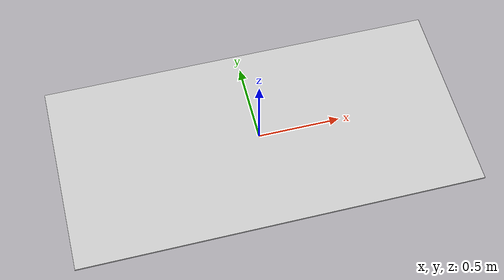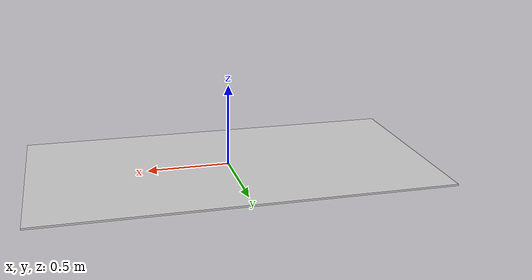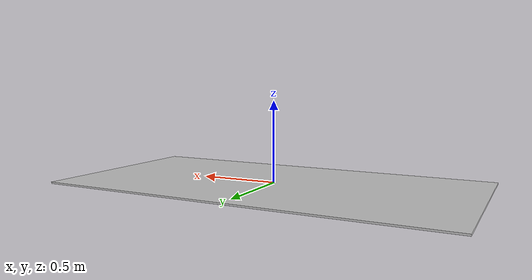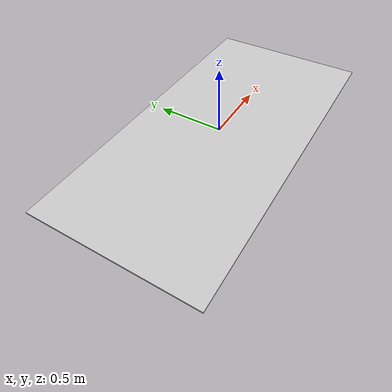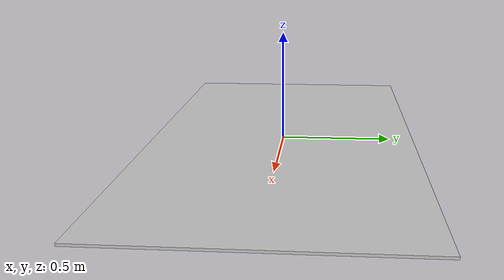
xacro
<?xml version="1.0" encoding="utf-8"?>
<robot name="object" xmlns:xacro="http://ros.org/wiki/xacro">

  <link name="base_link">
     <inertial>
       <origin xyz="0 0 0" />
       <mass value="1.0" />
       <inertia  ixx="1.0" ixy="0.0"  ixz="0.0"  iyy="1.0"  iyz="0.0"  izz="1.0" />
     </inertial>
     <visual>
       <origin xyz="0 0 0"/>
       <geometry>
         <box size="2.44 1.22 0.01" />
       </geometry>
     </visual>
     <collision>
       <origin xyz="0 0 0"/>
       <geometry>
         <box size="2.44 1.22 0.01" />
       </geometry>
       <surface>
        <friction>
          <ode>
            <mu>100000000000</mu>
            <mu2>100000000000</mu2>
          </ode>
        </friction>
      </surface>
     </collision>
    </link>
  <xacro:include filename="$(find object_description)/urdf/object.gazebo" />

</robot>
